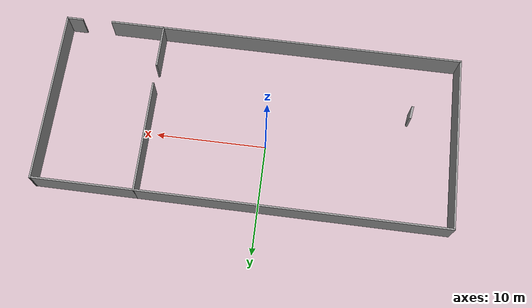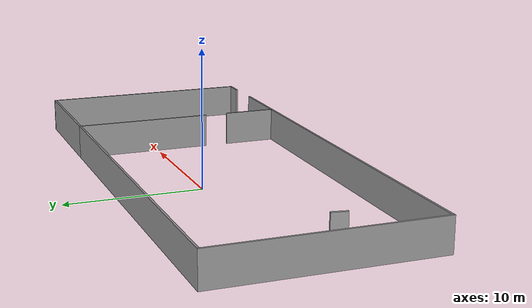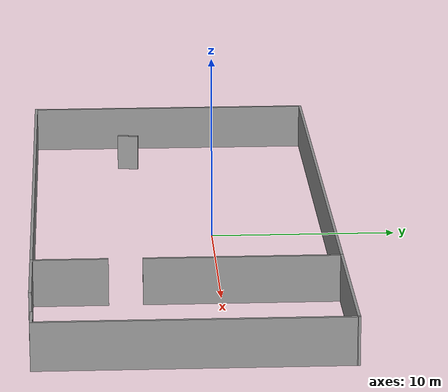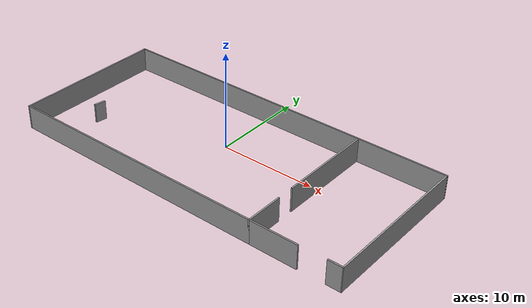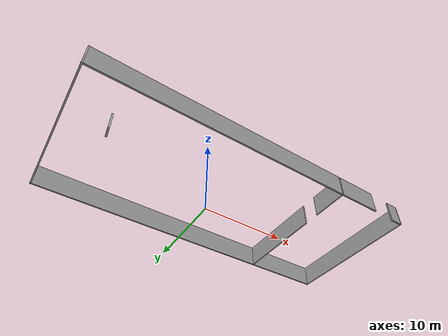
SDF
<?xml version='1.0'?>
<sdf version='1.6'>
  <model name='experi'>
    <pose frame=''>1.52264 -1.7974 0 0 -0 0</pose>
    <link name='Door_0'>
      <collision name='Door_0_Collision'>
        <geometry>
          <box>
            <size>1.18 0.2 2</size>
          </box>
        </geometry>
        <pose frame=''>0 0 1 0 -0 0</pose>
      </collision>
      <visual name='Door_0_Visual'>
        <pose frame=''>0 0 1 0 -0 0</pose>
        <geometry>
          <box>
            <size>1.18 0.2 2</size>
          </box>
        </geometry>
        <material>
          <script>
            <uri>file://media/materials/scripts/gazebo.material</uri>
            <name>Gazebo/Grey</name>
          </script>
        </material>
      </visual>
      <pose frame=''>-14.2386 -2.52558 0 0 -0 -1.72455</pose>
    </link>
    <link name='Wall_0'>
      <collision name='Wall_0_Collision'>
        <geometry>
          <box>
            <size>27.75 0.15 2.5</size>
          </box>
        </geometry>
        <pose frame=''>0 0 1.25 0 -0 0</pose>
      </collision>
      <visual name='Wall_0_Visual'>
        <pose frame=''>0 0 1.25 0 -0 0</pose>
        <geometry>
          <box>
            <size>27.75 0.15 2.5</size>
          </box>
        </geometry>
        <material>
          <script>
            <uri>file://media/materials/scripts/gazebo.material</uri>
            <name>Gazebo/Grey</name>
          </script>
          <ambient>1 1 1 1</ambient>
        </material>
        <meta>
          <layer>0</layer>
        </meta>
      </visual>
      <pose frame=''>-4.55006 7.92494 0 0 -0 0</pose>
    </link>
    <link name='Wall_1'>
      <collision name='Wall_1_Collision'>
        <geometry>
          <box>
            <size>10.25 0.15 2.5</size>
          </box>
        </geometry>
        <pose frame=''>0 0 1.25 0 -0 0</pose>
      </collision>
      <visual name='Wall_1_Visual'>
        <pose frame=''>0 0 1.25 0 -0 0</pose>
        <geometry>
          <box>
            <size>10.25 0.15 2.5</size>
          </box>
        </geometry>
        <material>
          <script>
            <uri>file://media/materials/scripts/gazebo.material</uri>
            <name>Gazebo/Grey</name>
          </script>
          <ambient>1 1 1 1</ambient>
        </material>
        <meta>
          <layer>0</layer>
        </meta>
      </visual>
      <pose frame=''>9.24994 2.87494 0 0 -0 -1.5708</pose>
    </link>
    <link name='Wall_11'>
      <collision name='Wall_11_Collision'>
        <geometry>
          <box>
            <size>5 0.15 2.5</size>
          </box>
        </geometry>
        <pose frame=''>0 0 1.25 0 -0 0</pose>
      </collision>
      <visual name='Wall_11_Visual'>
        <pose frame=''>0 0 1.25 0 -0 0</pose>
        <geometry>
          <box>
            <size>5 0.15 2.5</size>
          </box>
        </geometry>
        <material>
          <script>
            <uri>file://media/materials/scripts/gazebo.material</uri>
            <name>Gazebo/Grey</name>
          </script>
          <ambient>1 1 1 1</ambient>
        </material>
        <meta>
          <layer>0</layer>
        </meta>
      </visual>
      <pose frame=''>11.6749 -7.92506 0 0 -0 0</pose>
    </link>
    <link name='Wall_3'>
      <collision name='Wall_3_Collision'>
        <geometry>
          <box>
            <size>16 0.15 2.5</size>
          </box>
        </geometry>
        <pose frame=''>0 0 1.25 0 -0 0</pose>
      </collision>
      <visual name='Wall_3_Visual'>
        <pose frame=''>0 0 1.25 0 -0 0</pose>
        <geometry>
          <box>
            <size>16 0.15 2.5</size>
          </box>
        </geometry>
        <material>
          <script>
            <uri>file://media/materials/scripts/gazebo.material</uri>
            <name>Gazebo/Grey</name>
          </script>
          <ambient>1 1 1 1</ambient>
        </material>
        <meta>
          <layer>0</layer>
        </meta>
      </visual>
      <pose frame=''>-18.3501 -6.3e-05 0 0 -0 -1.5708</pose>
    </link>
    <link name='Wall_4'>
      <collision name='Wall_4_Collision'>
        <geometry>
          <box>
            <size>27.75 0.15 2.5</size>
          </box>
        </geometry>
        <pose frame=''>0 0 1.25 0 -0 0</pose>
      </collision>
      <visual name='Wall_4_Visual'>
        <pose frame=''>0 0 1.25 0 -0 0</pose>
        <geometry>
          <box>
            <size>27.75 0.15 2.5</size>
          </box>
        </geometry>
        <material>
          <script>
            <uri>file://media/materials/scripts/gazebo.material</uri>
            <name>Gazebo/Grey</name>
          </script>
          <ambient>1 1 1 1</ambient>
        </material>
        <meta>
          <layer>0</layer>
        </meta>
      </visual>
      <pose frame=''>-4.55006 -7.92506 0 0 -0 0</pose>
    </link>
    <link name='Wall_5'>
      <collision name='Wall_5_Collision'>
        <geometry>
          <box>
            <size>4 0.15 2.5</size>
          </box>
        </geometry>
        <pose frame=''>0 0 1.25 0 -0 0</pose>
      </collision>
      <visual name='Wall_5_Visual'>
        <pose frame=''>0 0 1.25 0 -0 0</pose>
        <geometry>
          <box>
            <size>4 0.15 2.5</size>
          </box>
        </geometry>
        <material>
          <script>
            <uri>file://media/materials/scripts/gazebo.material</uri>
            <name>Gazebo/Grey</name>
          </script>
          <ambient>1 1 1 1</ambient>
        </material>
        <meta>
          <layer>0</layer>
        </meta>
      </visual>
      <pose frame=''>9.24994 -6.00006 0 0 -0 1.5708</pose>
    </link>
    <link name='Wall_7'>
      <collision name='Wall_7_Collision'>
        <geometry>
          <box>
            <size>9.25 0.15 2.5</size>
          </box>
        </geometry>
        <pose frame=''>0 0 1.25 0 -0 0</pose>
      </collision>
      <visual name='Wall_7_Visual'>
        <pose frame=''>0 0 1.25 0 -0 0</pose>
        <geometry>
          <box>
            <size>9.25 0.15 2.5</size>
          </box>
        </geometry>
        <material>
          <script>
            <uri>file://media/materials/scripts/gazebo.material</uri>
            <name>Gazebo/Grey</name>
          </script>
          <ambient>1 1 1 1</ambient>
        </material>
        <meta>
          <layer>0</layer>
        </meta>
      </visual>
      <pose frame=''>13.7999 7.92494 0 0 -0 0</pose>
    </link>
    <link name='Wall_8'>
      <collision name='Wall_8_Collision'>
        <geometry>
          <box>
            <size>15.9062 0.15 2.5</size>
          </box>
        </geometry>
        <pose frame=''>0 0 1.25 0 -0 0</pose>
      </collision>
      <visual name='Wall_8_Visual'>
        <pose frame=''>0 0 1.25 0 -0 0</pose>
        <geometry>
          <box>
            <size>15.9062 0.15 2.5</size>
          </box>
        </geometry>
        <material>
          <script>
            <uri>file://media/materials/scripts/gazebo.material</uri>
            <name>Gazebo/Grey</name>
          </script>
          <ambient>1 1 1 1</ambient>
        </material>
        <meta>
          <layer>0</layer>
        </meta>
      </visual>
      <pose frame=''>18.3367 0.046862 0 0 -0 -1.57248</pose>
    </link>
    <link name='Wall_9'>
      <collision name='Wall_9_Collision'>
        <geometry>
          <box>
            <size>1.5 0.15 2.5</size>
          </box>
        </geometry>
        <pose frame=''>0 0 1.25 0 -0 0</pose>
      </collision>
      <visual name='Wall_9_Visual'>
        <pose frame=''>0 0 1.25 0 -0 0</pose>
        <geometry>
          <box>
            <size>1.5 0.15 2.5</size>
          </box>
        </geometry>
        <material>
          <script>
            <uri>file://media/materials/scripts/gazebo.material</uri>
            <name>Gazebo/Grey</name>
          </script>
          <ambient>1 1 1 1</ambient>
        </material>
        <meta>
          <layer>0</layer>
        </meta>
      </visual>
      <pose frame=''>17.622 -7.83121 0 0 -0 3.14159</pose>
    </link>
    <static>1</static>
  </model>
</sdf>
